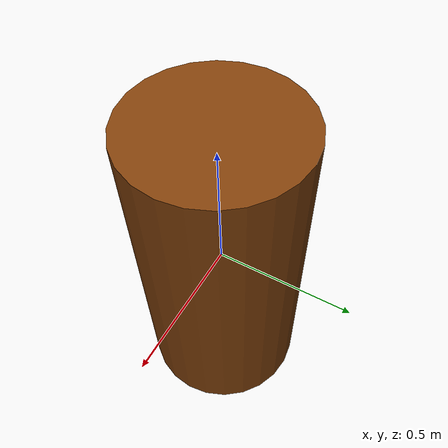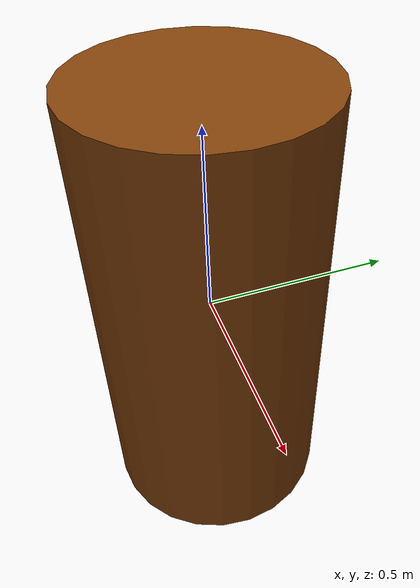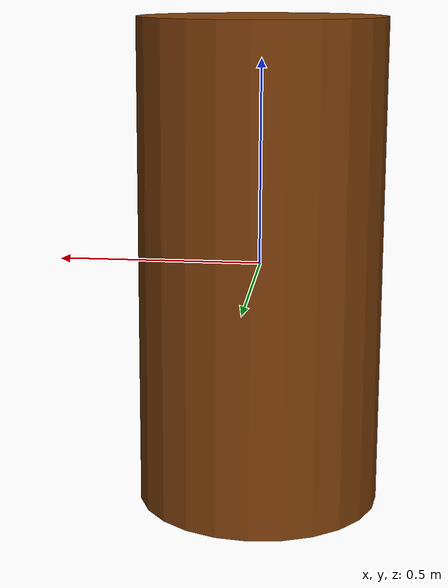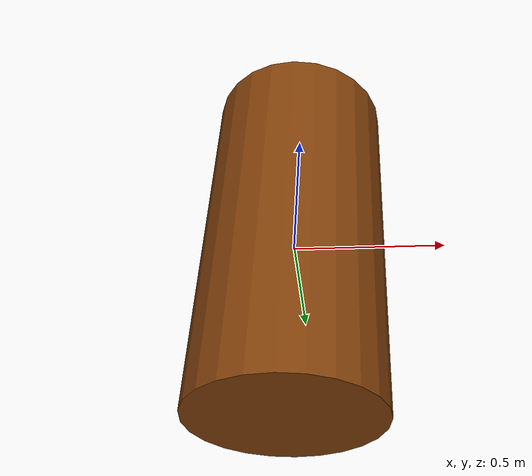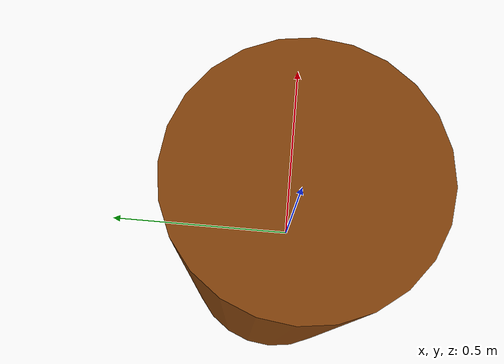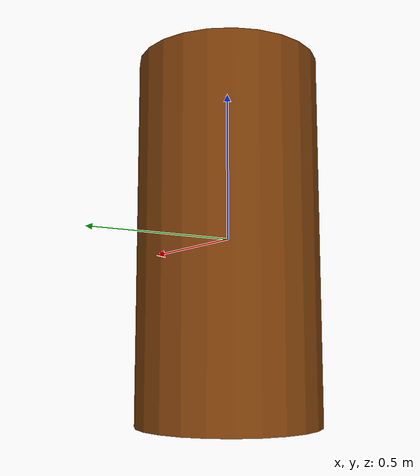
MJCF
<mujoco model="stool">
  <worldbody>
    <body name="stool" pos="0 0 0" quat="1 0 0 0">
      <geom name="base" type="cylinder" pos="0 0 0" size=".3 0.6" mass="0.001" material="seat"/>
    </body>
  </worldbody>

  <asset>
    <material name="seat" rgba="0.5 0.25 0.04 1"/>
    <material name="wood" rgba="0.6 0.32 0.07 1"/>
  </asset>

  <keyframe>
    <key name="home"
    qpos="0.038
      0.0057
      1.12
      0.99
      -0.027
      0.0087
      0.16
      -0.012
      -0.066
      0.044
      -0.15
      -0.31
      -1.5
      -1.7
      0.093
      0.11
      -0.14
      -0.24
      -1.5
      -1.7
      -0.01
      0.13
      0.59
      -0.45
      -1.5
      0.55
      -0.3
      -1.7"
      />
  </keyframe>
</mujoco>
